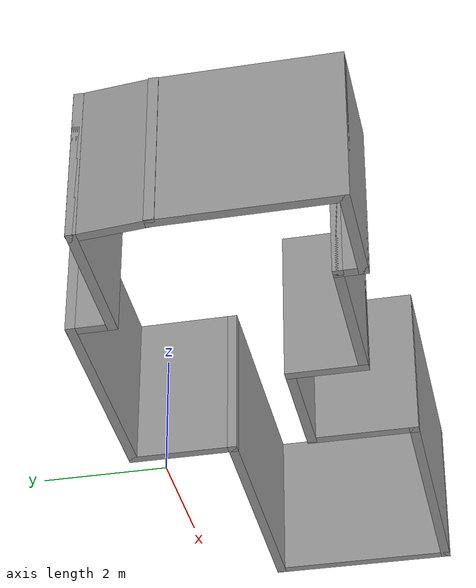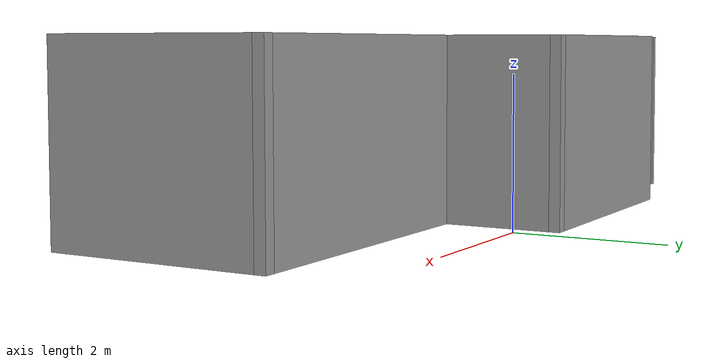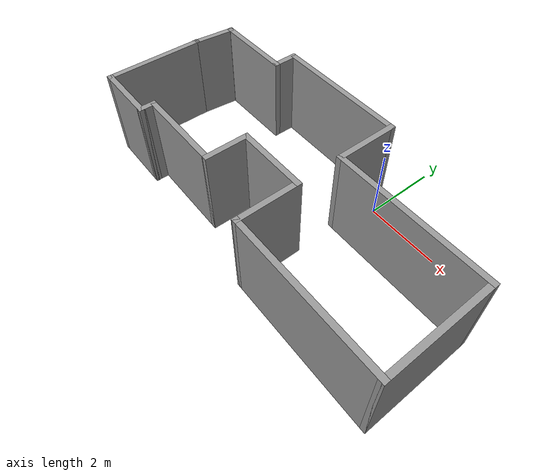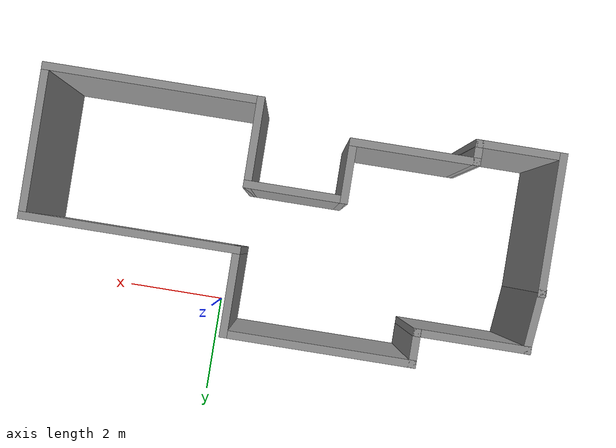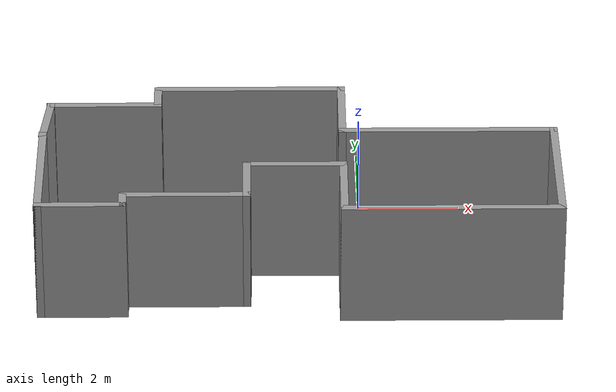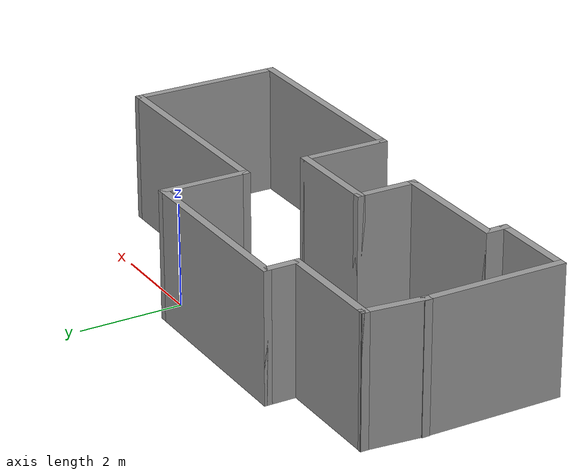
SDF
<?xml version='1.0'?>
<sdf version='1.7'>
  <model name='my_room'>
    <pose>-1.195 -1.775 0 0 -0 0</pose>
    <link name='Wall_0'>
      <collision name='Wall_0_Collision'>
        <geometry>
          <box>
            <size>0.16 0.15 2.5</size>
          </box>
        </geometry>
        <pose>0 0 1.25 0 -0 0</pose>
      </collision>
      <visual name='Wall_0_Visual'>
        <pose>0 0 1.25 0 -0 0</pose>
        <geometry>
          <box>
            <size>0.16 0.15 2.5</size>
          </box>
        </geometry>
        <material>
          <script>
            <uri>file://media/materials/scripts/gazebo.material</uri>
            <name>Gazebo/Grey</name>
          </script>
          <ambient>1 1 1 1</ambient>
        </material>
        <meta>
          <layer>0</layer>
        </meta>
      </visual>
      <pose>-4.95 0.525 0 0 -0 0</pose>
    </link>
    <link name='Wall_1'>
      <collision name='Wall_1_Collision'>
        <geometry>
          <box>
            <size>2.75 0.15 2.5</size>
          </box>
        </geometry>
        <pose>0 0 1.25 0 -0 0</pose>
      </collision>
      <visual name='Wall_1_Visual'>
        <pose>0 0 1.25 0 -0 0</pose>
        <geometry>
          <box>
            <size>2.75 0.15 2.5</size>
          </box>
        </geometry>
        <material>
          <script>
            <uri>file://media/materials/scripts/gazebo.material</uri>
            <name>Gazebo/Grey</name>
          </script>
          <ambient>1 1 1 1</ambient>
        </material>
        <meta>
          <layer>0</layer>
        </meta>
      </visual>
      <pose>-4.945 -0.775 0 0 -0 -1.5708</pose>
    </link>
    <link name='Wall_10'>
      <collision name='Wall_10_Collision'>
        <geometry>
          <box>
            <size>4.25 0.15 2.5</size>
          </box>
        </geometry>
        <pose>0 0 1.25 0 -0 0</pose>
      </collision>
      <visual name='Wall_10_Visual'>
        <pose>0 0 1.25 0 -0 0</pose>
        <geometry>
          <box>
            <size>4.25 0.15 2.5</size>
          </box>
        </geometry>
        <material>
          <script>
            <uri>file://media/materials/scripts/gazebo.material</uri>
            <name>Gazebo/Grey</name>
          </script>
          <ambient>1 1 1 1</ambient>
        </material>
        <meta>
          <layer>0</layer>
        </meta>
      </visual>
      <pose>2.905 0.625 0 0 -0 3.14159</pose>
    </link>
    <link name='Wall_11'>
      <collision name='Wall_11_Collision'>
        <geometry>
          <box>
            <size>1.75 0.15 2.5</size>
          </box>
        </geometry>
        <pose>0 0 1.25 0 -0 0</pose>
      </collision>
      <visual name='Wall_11_Visual'>
        <pose>0 0 1.25 0 -0 0</pose>
        <geometry>
          <box>
            <size>1.75 0.15 2.5</size>
          </box>
        </geometry>
        <material>
          <script>
            <uri>file://media/materials/scripts/gazebo.material</uri>
            <name>Gazebo/Grey</name>
          </script>
          <ambient>1 1 1 1</ambient>
        </material>
        <meta>
          <layer>0</layer>
        </meta>
      </visual>
      <pose>0.855 1.425 0 0 -0 1.5708</pose>
    </link>
    <link name='Wall_12'>
      <collision name='Wall_12_Collision'>
        <geometry>
          <box>
            <size>3.75 0.15 2.5</size>
          </box>
        </geometry>
        <pose>0 0 1.25 0 -0 0</pose>
      </collision>
      <visual name='Wall_12_Visual'>
        <pose>0 0 1.25 0 -0 0</pose>
        <geometry>
          <box>
            <size>3.75 0.15 2.5</size>
          </box>
        </geometry>
        <material>
          <script>
            <uri>file://media/materials/scripts/gazebo.material</uri>
            <name>Gazebo/Grey</name>
          </script>
          <ambient>1 1 1 1</ambient>
        </material>
        <meta>
          <layer>0</layer>
        </meta>
      </visual>
      <pose>-0.945 2.225 0 0 -0 3.14159</pose>
    </link>
    <link name='Wall_13'>
      <collision name='Wall_13_Collision'>
        <geometry>
          <box>
            <size>0.75 0.15 2.5</size>
          </box>
        </geometry>
        <pose>0 0 1.25 0 -0 0</pose>
      </collision>
      <visual name='Wall_13_Visual'>
        <pose>0 0 1.25 0 -0 0</pose>
        <geometry>
          <box>
            <size>0.75 0.15 2.5</size>
          </box>
        </geometry>
        <material>
          <script>
            <uri>file://media/materials/scripts/gazebo.material</uri>
            <name>Gazebo/Grey</name>
          </script>
          <ambient>1 1 1 1</ambient>
        </material>
        <meta>
          <layer>0</layer>
        </meta>
      </visual>
      <pose>-2.745 1.925 0 0 -0 -1.5708</pose>
    </link>
    <link name='Wall_14'>
      <collision name='Wall_14_Collision'>
        <geometry>
          <box>
            <size>2.25 0.15 2.5</size>
          </box>
        </geometry>
        <pose>0 0 1.25 0 -0 0</pose>
      </collision>
      <visual name='Wall_14_Visual'>
        <pose>0 0 1.25 0 -0 0</pose>
        <geometry>
          <box>
            <size>2.25 0.15 2.5</size>
          </box>
        </geometry>
        <material>
          <script>
            <uri>file://media/materials/scripts/gazebo.material</uri>
            <name>Gazebo/Grey</name>
          </script>
          <ambient>1 1 1 1</ambient>
        </material>
        <meta>
          <layer>0</layer>
        </meta>
      </visual>
      <pose>-3.795 1.625 0 0 -0 3.14159</pose>
    </link>
    <link name='Wall_15'>
      <collision name='Wall_15_Collision'>
        <geometry>
          <box>
            <size>0.16 0.15 2.5</size>
          </box>
        </geometry>
        <pose>0 0 1.25 0 -0 0</pose>
      </collision>
      <visual name='Wall_15_Visual'>
        <pose>0 0 1.25 0 -0 0</pose>
        <geometry>
          <box>
            <size>0.16 0.15 2.5</size>
          </box>
        </geometry>
        <material>
          <script>
            <uri>file://media/materials/scripts/gazebo.material</uri>
            <name>Gazebo/Grey</name>
          </script>
          <ambient>1 1 1 1</ambient>
        </material>
        <meta>
          <layer>0</layer>
        </meta>
      </visual>
      <pose>-4.84 1.625 0 0 -0 0</pose>
    </link>
    <link name='Wall_16'>
      <collision name='Wall_16_Collision'>
        <geometry>
          <box>
            <size>1.25549 0.15 2.5</size>
          </box>
        </geometry>
        <pose>0 0 1.25 0 -0 0</pose>
      </collision>
      <visual name='Wall_16_Visual'>
        <pose>0 0 1.25 0 -0 0</pose>
        <geometry>
          <box>
            <size>1.25549 0.15 2.5</size>
          </box>
        </geometry>
        <material>
          <script>
            <uri>file://media/materials/scripts/gazebo.material</uri>
            <name>Gazebo/Grey</name>
          </script>
          <ambient>1 1 1 1</ambient>
        </material>
        <meta>
          <layer>0</layer>
        </meta>
      </visual>
      <pose>-4.89 1.075 0 0 -0 -1.67047</pose>
    </link>
    <link name='Wall_2'>
      <collision name='Wall_2_Collision'>
        <geometry>
          <box>
            <size>1.75 0.15 2.5</size>
          </box>
        </geometry>
        <pose>0 0 1.25 0 -0 0</pose>
      </collision>
      <visual name='Wall_2_Visual'>
        <pose>0 0 1.25 0 -0 0</pose>
        <geometry>
          <box>
            <size>1.75 0.15 2.5</size>
          </box>
        </geometry>
        <material>
          <script>
            <uri>file://media/materials/scripts/gazebo.material</uri>
            <name>Gazebo/Grey</name>
          </script>
          <ambient>1 1 1 1</ambient>
        </material>
        <meta>
          <layer>0</layer>
        </meta>
      </visual>
      <pose>-4.145 -2.075 0 0 -0 0</pose>
    </link>
    <link name='Wall_3'>
      <collision name='Wall_3_Collision'>
        <geometry>
          <box>
            <size>0.5 0.15 2.5</size>
          </box>
        </geometry>
        <pose>0 0 1.25 0 -0 0</pose>
      </collision>
      <visual name='Wall_3_Visual'>
        <pose>0 0 1.25 0 -0 0</pose>
        <geometry>
          <box>
            <size>0.5 0.15 2.5</size>
          </box>
        </geometry>
        <material>
          <script>
            <uri>file://media/materials/scripts/gazebo.material</uri>
            <name>Gazebo/Grey</name>
          </script>
          <ambient>1 1 1 1</ambient>
        </material>
        <meta>
          <layer>0</layer>
        </meta>
      </visual>
      <pose>-3.345 -1.9 0 0 -0 1.5708</pose>
    </link>
    <link name='Wall_4'>
      <collision name='Wall_4_Collision'>
        <geometry>
          <box>
            <size>2.5 0.15 2.5</size>
          </box>
        </geometry>
        <pose>0 0 1.25 0 -0 0</pose>
      </collision>
      <visual name='Wall_4_Visual'>
        <pose>0 0 1.25 0 -0 0</pose>
        <geometry>
          <box>
            <size>2.5 0.15 2.5</size>
          </box>
        </geometry>
        <material>
          <script>
            <uri>file://media/materials/scripts/gazebo.material</uri>
            <name>Gazebo/Grey</name>
          </script>
          <ambient>1 1 1 1</ambient>
        </material>
        <meta>
          <layer>0</layer>
        </meta>
      </visual>
      <pose>-2.17 -1.725 0 0 -0 0</pose>
    </link>
    <link name='Wall_5'>
      <collision name='Wall_5_Collision'>
        <geometry>
          <box>
            <size>1.25 0.15 2.5</size>
          </box>
        </geometry>
        <pose>0 0 1.25 0 -0 0</pose>
      </collision>
      <visual name='Wall_5_Visual'>
        <pose>0 0 1.25 0 -0 0</pose>
        <geometry>
          <box>
            <size>1.25 0.15 2.5</size>
          </box>
        </geometry>
        <material>
          <script>
            <uri>file://media/materials/scripts/gazebo.material</uri>
            <name>Gazebo/Grey</name>
          </script>
          <ambient>1 1 1 1</ambient>
        </material>
        <meta>
          <layer>0</layer>
        </meta>
      </visual>
      <pose>-0.995 -1.175 0 0 -0 1.5708</pose>
    </link>
    <link name='Wall_6'>
      <collision name='Wall_6_Collision'>
        <geometry>
          <box>
            <size>2 0.15 2.5</size>
          </box>
        </geometry>
        <pose>0 0 1.25 0 -0 0</pose>
      </collision>
      <visual name='Wall_6_Visual'>
        <pose>0 0 1.25 0 -0 0</pose>
        <geometry>
          <box>
            <size>2 0.15 2.5</size>
          </box>
        </geometry>
        <material>
          <script>
            <uri>file://media/materials/scripts/gazebo.material</uri>
            <name>Gazebo/Grey</name>
          </script>
          <ambient>1 1 1 1</ambient>
        </material>
        <meta>
          <layer>0</layer>
        </meta>
      </visual>
      <pose>-0.07 -0.625 0 0 -0 0</pose>
    </link>
    <link name='Wall_7'>
      <collision name='Wall_7_Collision'>
        <geometry>
          <box>
            <size>1.75 0.15 2.5</size>
          </box>
        </geometry>
        <pose>0 0 1.25 0 -0 0</pose>
      </collision>
      <visual name='Wall_7_Visual'>
        <pose>0 0 1.25 0 -0 0</pose>
        <geometry>
          <box>
            <size>1.75 0.15 2.5</size>
          </box>
        </geometry>
        <material>
          <script>
            <uri>file://media/materials/scripts/gazebo.material</uri>
            <name>Gazebo/Grey</name>
          </script>
          <ambient>1 1 1 1</ambient>
        </material>
        <meta>
          <layer>0</layer>
        </meta>
      </visual>
      <pose>0.855 -1.425 0 0 -0 -1.5708</pose>
    </link>
    <link name='Wall_8'>
      <collision name='Wall_8_Collision'>
        <geometry>
          <box>
            <size>4.25 0.15 2.5</size>
          </box>
        </geometry>
        <pose>0 0 1.25 0 -0 0</pose>
      </collision>
      <visual name='Wall_8_Visual'>
        <pose>0 0 1.25 0 -0 0</pose>
        <geometry>
          <box>
            <size>4.25 0.15 2.5</size>
          </box>
        </geometry>
        <material>
          <script>
            <uri>file://media/materials/scripts/gazebo.material</uri>
            <name>Gazebo/Grey</name>
          </script>
          <ambient>1 1 1 1</ambient>
        </material>
        <meta>
          <layer>0</layer>
        </meta>
      </visual>
      <pose>2.905 -2.225 0 0 -0 0</pose>
    </link>
    <link name='Wall_9'>
      <collision name='Wall_9_Collision'>
        <geometry>
          <box>
            <size>3 0.15 2.5</size>
          </box>
        </geometry>
        <pose>0 0 1.25 0 -0 0</pose>
      </collision>
      <visual name='Wall_9_Visual'>
        <pose>0 0 1.25 0 -0 0</pose>
        <geometry>
          <box>
            <size>3 0.15 2.5</size>
          </box>
        </geometry>
        <material>
          <script>
            <uri>file://media/materials/scripts/gazebo.material</uri>
            <name>Gazebo/Grey</name>
          </script>
          <ambient>1 1 1 1</ambient>
        </material>
        <meta>
          <layer>0</layer>
        </meta>
      </visual>
      <pose>4.955 -0.8 0 0 -0 1.5708</pose>
    </link>
    <static>1</static>
  </model>
</sdf>
